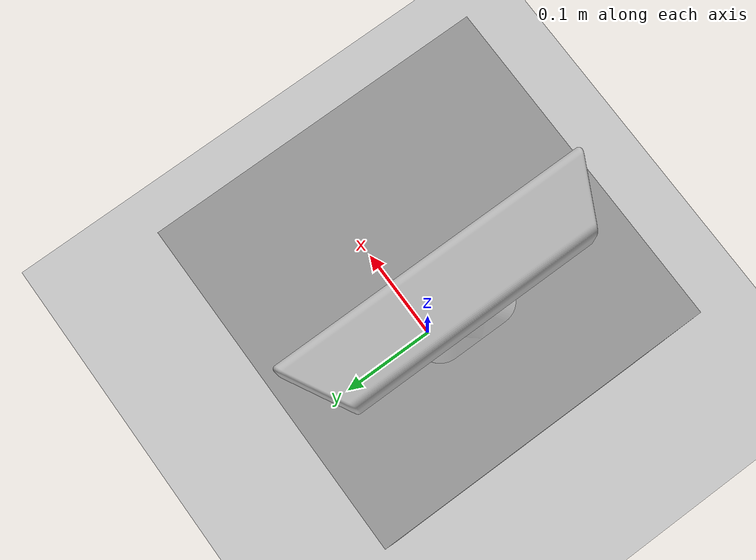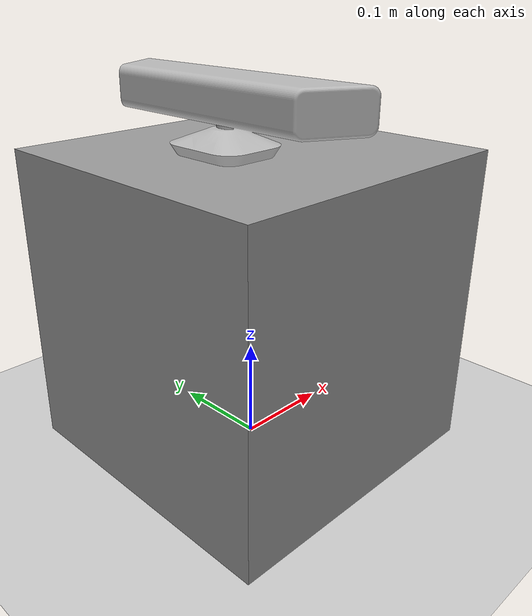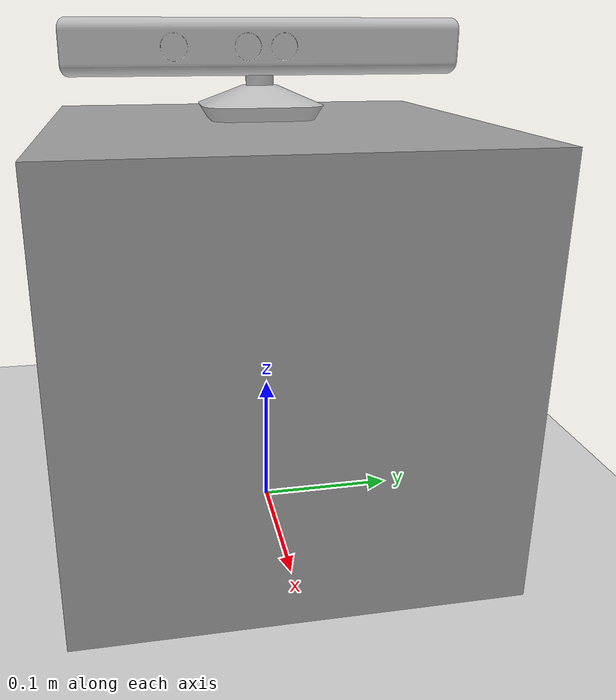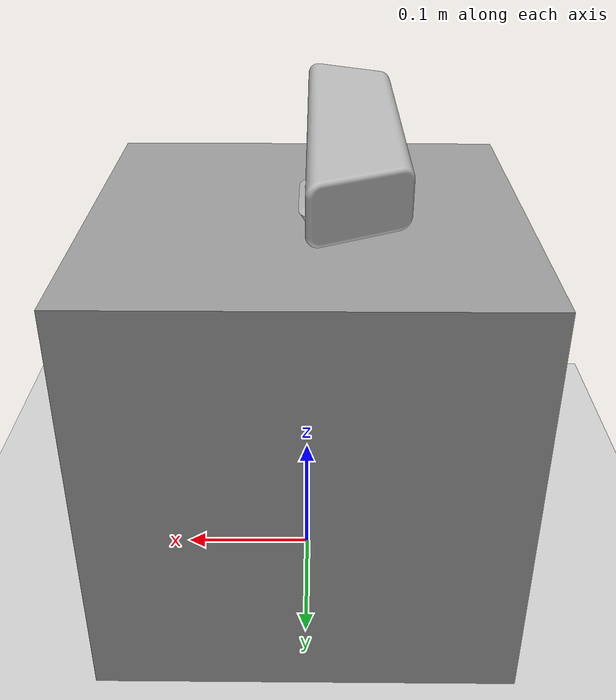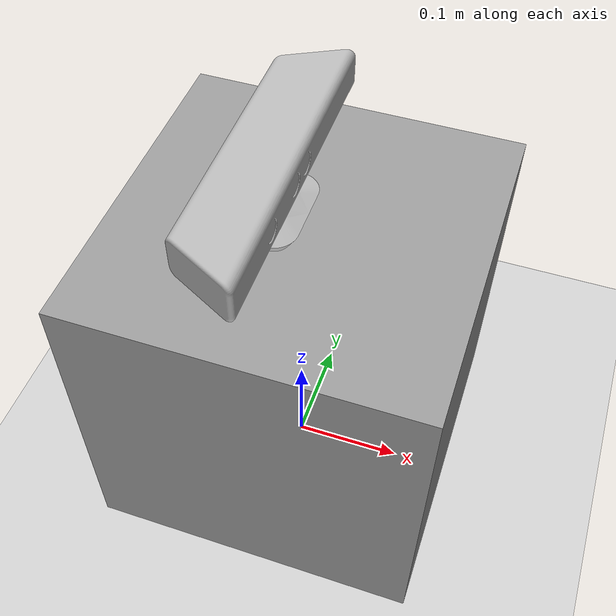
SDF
<?xml version="1.0" ?>
<sdf version="1.7">
  <!--Este archivo sirve como un template para la generación de mundos, uselo para hacer pruebas si quiere-->
  <world name="default">
    <include>
      <uri>model://ground_plane</uri>
    </include>
    <include>
      <uri>model://sun</uri>
    </include>

    <include>
      <uri>model://box_and_kinect</uri>
      <pose>0 0 0 0 0 0 </pose>
    </include>

  </world>
</sdf>

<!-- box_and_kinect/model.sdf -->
<sdf version='1.7'>
  <model name='box_and_kinect'>
    <include>
      <uri>model://kinect_ros</uri>
      <pose> 0 0 0.35 0 0 0 </pose>
    </include>

    <include>
      <uri>model://moving_box</uri>
      <pose> 0 0 0.15 0 0 0 </pose>
    </include>

    <joint name="box_kinect_joint" type="fixed">
      <child>kinect_ros::link</child>
      <parent>moving_box::robot_link</parent>
    </joint>

  </model>
</sdf>

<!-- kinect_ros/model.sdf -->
<sdf version="1.5">
  <model name="kinect_ros">
    <pose>0 0 0.036 0 0 0</pose>
    <link name="link">
      <inertial>
        <mass>0.1</mass>
      </inertial>
      <collision name="collision">
        <geometry>
          <box>
            <size>0.073000 0.276000 0.072000</size>
          </box>
        </geometry>
      </collision>
      <visual name="visual">
        <geometry>
          <mesh>
            <uri>model://kinect/meshes/kinect.dae</uri>
          </mesh>
        </geometry>
      </visual>

      <sensor name="camera" type="depth">
        <update_rate>20</update_rate>
        <camera>
          <horizontal_fov>1.047198</horizontal_fov>
          <image>
            <width>640</width>
            <height>480</height>
            <format>R8G8B8</format>
          </image>
          <clip>
            <near>0.05</near>
            <far>3</far>
          </clip>
        </camera>

        <plugin name="camera_plugin" filename="libgazebo_ros_openni_kinect.so">
          <baseline>0.2</baseline>
          <alwaysOn>true</alwaysOn>
          <updateRate>0.0</updateRate>
          <cameraName>camera_ir</cameraName>
          <imageTopicName>/camera/rgb/image_rect_color</imageTopicName>
          <cameraInfoTopicName>/camera/rgb/camera_info</cameraInfoTopicName>
          <depthImageTopicName>/camera/depth_registered/image_raw</depthImageTopicName>
          <depthImageCameraInfoTopicName>/camera/depth/camera_info</depthImageCameraInfoTopicName>
          <pointCloudTopicName>/camera/depth/points</pointCloudTopicName>
          <frameName>camera_link</frameName>
          <pointCloudCutoff>0.5</pointCloudCutoff>
          <pointCloudCutoffMax>3.0</pointCloudCutoffMax>
          <distortionK1>0</distortionK1>
          <distortionK2>0</distortionK2>
          <distortionK3>0</distortionK3>
          <distortionT1>0</distortionT1>
          <distortionT2>0</distortionT2>
          <CxPrime>0</CxPrime>
          <Cx>0</Cx>
          <Cy>0</Cy>
          <focalLength>0</focalLength>
          <hackBaseline>0</hackBaseline>
        </plugin>
      </sensor>
    </link>
  </model>
</sdf>

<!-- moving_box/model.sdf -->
<sdf version='1.7'>
  <model name='moving_box'>
    <pose>0 0 0.15 0 0 0</pose>

    <link name='robot_link'>
      <inertial>
        <mass>1</mass>
        <inertia>
          <ixx>0.166667</ixx>
          <ixy>0</ixy>
          <ixz>0</ixz>
          <iyy>0.166667</iyy>
          <iyz>0</iyz>
          <izz>0.166667</izz>
        </inertia>
        <pose>0 0 0 0 -0 0</pose>
      </inertial>
      <pose>0 0 0 0 -0 0</pose>
      <gravity>1</gravity>
      <self_collide>0</self_collide>
      <kinematic>0</kinematic>
      <enable_wind>0</enable_wind>
      <visual name='visual'>
        <pose>0 0 0 0 -0 0</pose>
        <geometry>
          <box>
            <size>0.3 0.3 0.3</size>
          </box>
        </geometry>
        <material>
          <lighting>1</lighting>
          <script>
            <uri>file://media/materials/scripts/gazebo.material</uri>
            <name>Gazebo/Grey</name>
          </script>
          <shader type='pixel'>
            <normal_map>__default__</normal_map>
          </shader>
          <ambient>0.3 0.3 0.3 1</ambient>
          <diffuse>0.7 0.7 0.7 1</diffuse>
          <specular>0.01 0.01 0.01 1</specular>
          <emissive>0 0 0 1</emissive>
        </material>
        <transparency>0</transparency>
        <cast_shadows>1</cast_shadows>
      </visual>
      <collision name='collision'>
        <laser_retro>0</laser_retro>
        <max_contacts>10</max_contacts>
        <pose>0 0 0 0 -0 0</pose>
        <geometry>
          <box>
            <size>0.3 0.3 0.3</size>
          </box>
        </geometry>
        <surface>
          <friction>
            <ode>
              <mu>1</mu>
              <mu2>1</mu2>
              <fdir1>0 0 0</fdir1>
              <slip1>0</slip1>
              <slip2>0</slip2>
            </ode>
            <torsional>
              <coefficient>1</coefficient>
              <patch_radius>0</patch_radius>
              <surface_radius>0</surface_radius>
              <use_patch_radius>1</use_patch_radius>
              <ode>
                <slip>0</slip>
              </ode>
            </torsional>
          </friction>
          <bounce>
            <restitution_coefficient>0</restitution_coefficient>
            <threshold>1e+06</threshold>
          </bounce>
          <contact>
            <collide_without_contact>0</collide_without_contact>
            <collide_without_contact_bitmask>1</collide_without_contact_bitmask>
            <collide_bitmask>1</collide_bitmask>
            <ode>
              <soft_cfm>0</soft_cfm>
              <soft_erp>0.2</soft_erp>
              <kp>1e+13</kp>
              <kd>1</kd>
              <max_vel>0.01</max_vel>
              <min_depth>0</min_depth>
            </ode>
            <bullet>
              <split_impulse>1</split_impulse>
              <split_impulse_penetration_threshold>-0.01</split_impulse_penetration_threshold>
              <soft_cfm>0</soft_cfm>
              <soft_erp>0.2</soft_erp>
              <kp>1e+13</kp>
              <kd>1</kd>
            </bullet>
          </contact>
        </surface>
      </collision>
    </link>
    <static>0</static>
    <allow_auto_disable>1</allow_auto_disable>

    <plugin name='object_controller' filename='libgazebo_ros_planar_move.so'>
      <commandTopic>cmd_vel</commandTopic>
      <odometryTopic>odom</odometryTopic>
      <odometryFrame>odom</odometryFrame>
      <odometryRate>20.0</odometryRate>
      <robotBaseFrame>base_link</robotBaseFrame>
    </plugin>

  </model>
</sdf>
